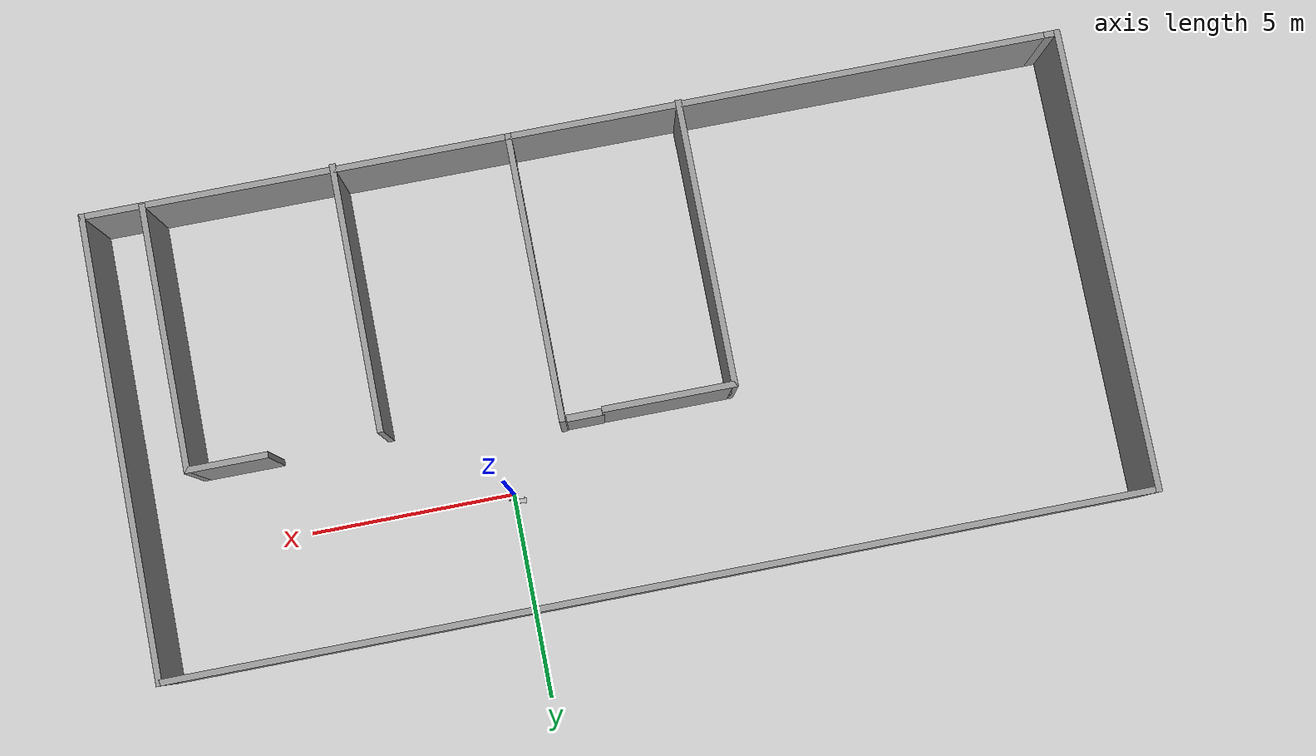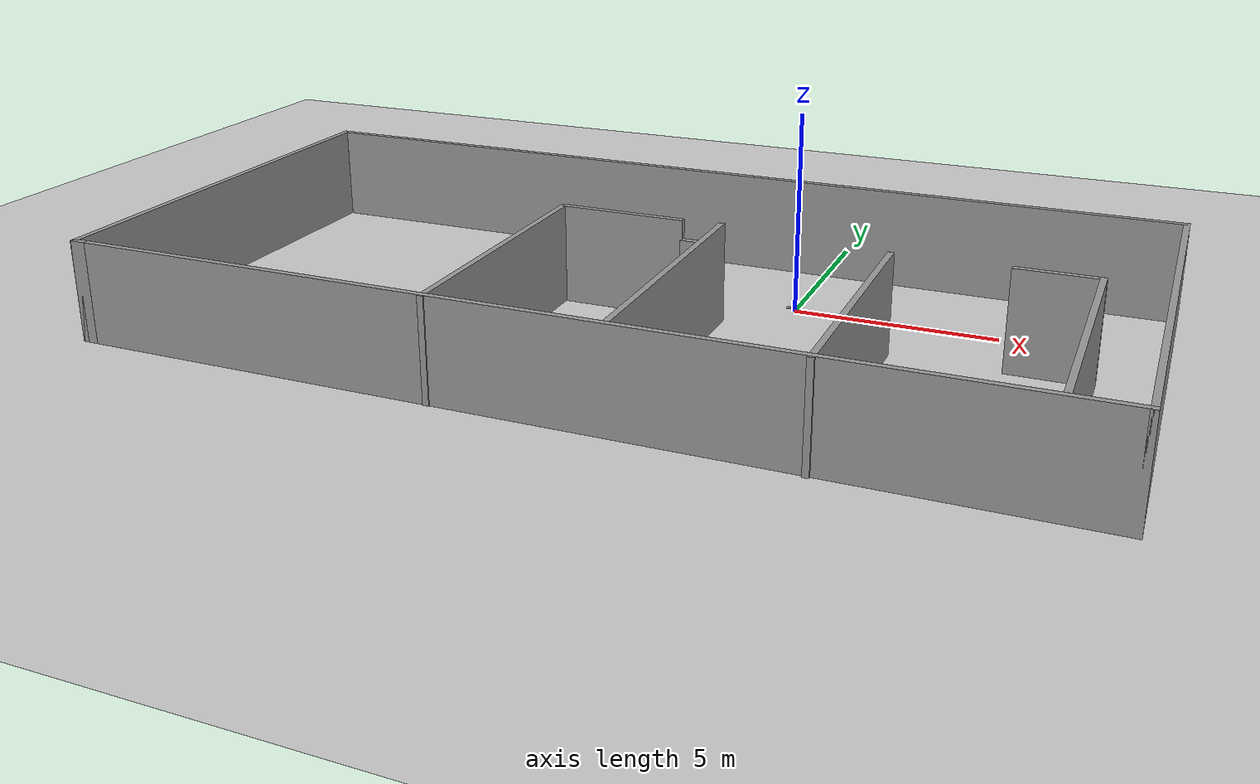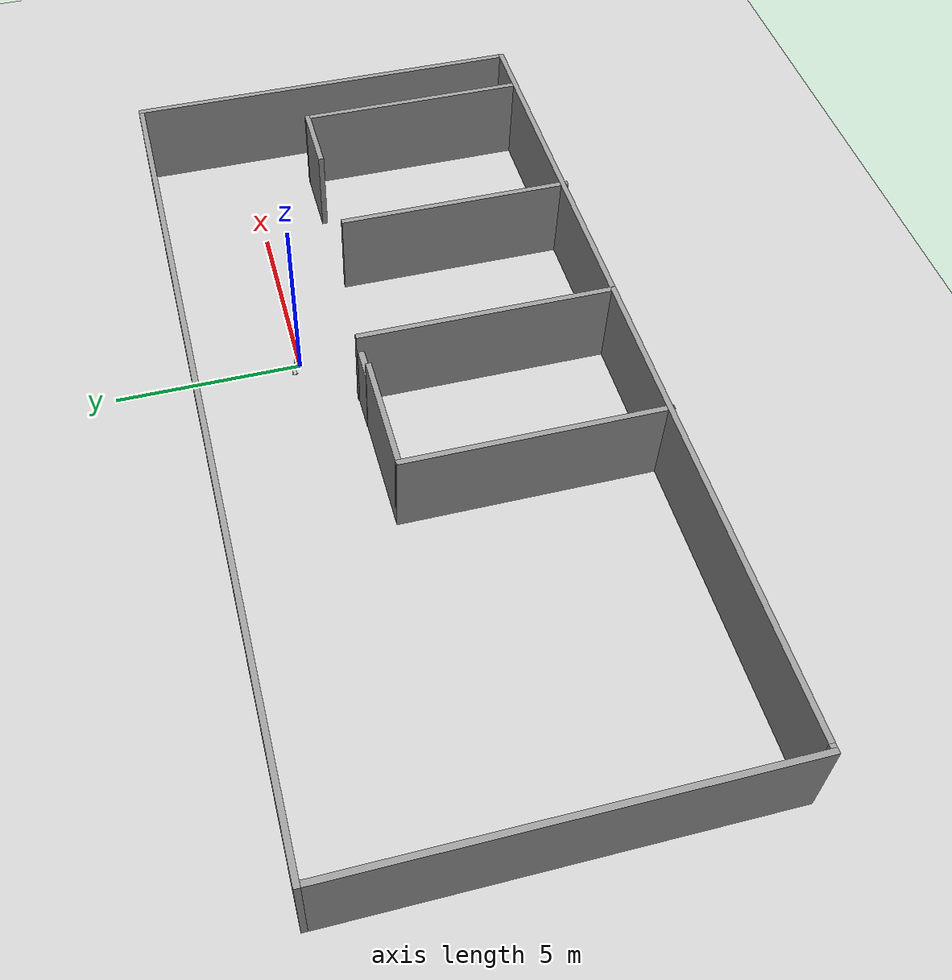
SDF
<sdf version="1.7">
 <world name="default">
  <light name="sun" type="directional">
   <pose>0 0 10 0 -0 0</pose>
   <diffuse>0.8 0.8 0.8 1</diffuse>
   <specular>0.2 0.2 0.2 1</specular>
   <attenuation>
    <range>1000</range>
    <constant>0.9</constant>
    <linear>0.01</linear>
    <quadratic>0.001</quadratic>
   </attenuation>
   <direction>-0.5 0.1 -0.9</direction>
   <spot><inner_angle>0</inner_angle><outer_angle>0</outer_angle><falloff>0</falloff></spot>
  </light>
  <model name="ground_plane">
   <static>1</static>
   <link name="link">
    <collision name="collision">
     <geometry><plane><normal>0 0 1</normal><size>100 100</size></plane></geometry>
     <surface><friction><ode><mu>100</mu><mu2>50</mu2></ode></friction></surface>
    </collision>
    <visual name="visual">
     <cast_shadows>0</cast_shadows>
     <geometry><plane><normal>0 0 1</normal><size>100 100</size></plane></geometry>
     <material>
      <script><uri>file://media/materials/scripts/gazebo.material</uri><name>Gazebo/Grey</name></script>
     </material>
    </visual>
   </link>
  </model>
  <gravity>0 0 -9.8</gravity>
  <magnetic_field>6e-06 2.3e-05 -4.2e-05</magnetic_field>
  <atmosphere type="adiabatic"/>
  <physics type="ode">
   <max_step_size>0.001</max_step_size>
   <real_time_factor>1</real_time_factor>
   <real_time_update_rate>1000</real_time_update_rate>
  </physics>
  <scene><ambient>0.4 0.4 0.4 1</ambient><background>0.7 0.7 0.7 1</background><shadows>1</shadows></scene>
  <spherical_coordinates>
   <surface_model>EARTH_WGS84</surface_model>
   <latitude_deg>0</latitude_deg>
   <longitude_deg>0</longitude_deg>
   <elevation>0</elevation>
   <heading_deg>0</heading_deg>
  </spherical_coordinates>
  <model name="model1">
   <pose>-3.05629 -2.70177 0 0 -0 0</pose>
   <link name="Door_2">
    <collision name="Door_2_Collision">
     <geometry><box><size>0.9 0.17 2</size></box></geometry>
     <pose>0 0 1 0 -0 0</pose>
    </collision>
    <visual name="Door_2_Visual">
     <pose>0 0 1 0 -0 0</pose>
     <geometry><box><size>0.9 0.17 2</size></box></geometry>
     <material>
      <script><uri>file://media/materials/scripts/gazebo.material</uri><name>Gazebo/Grey</name></script>
     </material>
    </visual>
    <pose>0.991994 1.30221 0 0 -0 0</pose>
   </link>
   <link name="Wall_23">
    <collision name="Wall_23_Collision">
     <geometry><box><size>23.5 0.15 2.5</size></box></geometry>
     <pose>0 0 1.25 0 -0 0</pose>
    </collision>
    <visual name="Wall_23_Visual">
     <pose>0 0 1.25 0 -0 0</pose>
     <geometry><box><size>23.5 0.15 2.5</size></box></geometry>
     <material>
      <script><uri>file://media/materials/scripts/gazebo.material</uri><name>Gazebo/Grey</name></script>
      <ambient>1 1 1 1</ambient>
     </material>
     <meta><layer>0</layer></meta>
    </visual>
    <pose>0.125 -5.51941 0 0 -0 0</pose>
   </link>
   <link name="Wall_24">
    <collision name="Wall_24_Collision">
     <geometry><box><size>11.25 0.15 2.5</size></box></geometry>
     <pose>0 0 1.25 0 -0 0</pose>
    </collision>
    <visual name="Wall_24_Visual">
     <pose>0 0 1.25 0 -0 0</pose>
     <geometry><box><size>11.25 0.15 2.5</size></box></geometry>
     <material>
      <script><uri>file://media/materials/scripts/gazebo.material</uri><name>Gazebo/Grey</name></script>
      <ambient>1 1 1 1</ambient>
     </material>
     <meta><layer>0</layer></meta>
    </visual>
    <pose>11.8 0.03059 0 0 -0 1.5708</pose>
   </link>
   <link name="Wall_25">
    <collision name="Wall_25_Collision">
     <geometry><box><size>23.75 0.15 2.5</size></box></geometry>
     <pose>0 0 1.25 0 -0 0</pose>
    </collision>
    <visual name="Wall_25_Visual">
     <pose>0 0 1.25 0 -0 0</pose>
     <geometry><box><size>23.75 0.15 2.5</size></box></geometry>
     <material>
      <script><uri>file://media/materials/scripts/gazebo.material</uri><name>Gazebo/Grey</name></script>
      <ambient>1 1 1 1</ambient>
     </material>
     <meta><layer>0</layer></meta>
    </visual>
    <pose>-0 5.58059 0 0 -0 3.14159</pose>
   </link>
   <link name="Wall_26">
    <collision name="Wall_26_Collision">
     <geometry><box><size>11.25 0.15 2.5</size></box></geometry>
     <pose>0 0 1.25 0 -0 0</pose>
    </collision>
    <visual name="Wall_26_Visual">
     <pose>0 0 1.25 0 -0 0</pose>
     <geometry><box><size>11.25 0.15 2.5</size></box></geometry>
     <material>
      <script><uri>file://media/materials/scripts/gazebo.material</uri><name>Gazebo/Grey</name></script>
      <ambient>1 1 1 1</ambient>
     </material>
     <meta><layer>0</layer></meta>
    </visual>
    <pose>-11.8 0.03059 0 0 -0 -1.5708</pose>
   </link>
   <link name="Wall_27">
    <collision name="Wall_27_Collision">
     <geometry><box><size>0.4 0.15 2.5</size></box></geometry>
     <pose>0 0 1.25 0 -0 0</pose>
    </collision>
    <visual name="Wall_27_Visual">
     <pose>0 0 1.25 0 -0 0</pose>
     <geometry><box><size>0.4 0.15 2.5</size></box></geometry>
     <material>
      <script><uri>file://media/materials/scripts/gazebo.material</uri><name>Gazebo/Grey</name></script>
      <ambient>1 1 1 1</ambient>
     </material>
     <meta><layer>0</layer></meta>
    </visual>
    <pose>-11.675 -5.51941 0 0 -0 0</pose>
   </link>
   <link name="Wall_29">
    <collision name="Wall_29_Collision">
     <geometry><box><size>7 0.15 2.5</size></box></geometry>
     <pose>0 0 1.25 0 -0 0</pose>
    </collision>
    <visual name="Wall_29_Visual">
     <pose>0 0 1.25 0 -0 0</pose>
     <geometry><box><size>7 0.15 2.5</size></box></geometry>
     <material>
      <script><uri>file://media/materials/scripts/gazebo.material</uri><name>Gazebo/Grey</name></script>
      <ambient>1 1 1 1</ambient>
     </material>
     <meta><layer>0</layer></meta>
    </visual>
    <pose>-2.58706 -2.125 0 0 -0 1.5708</pose>
   </link>
   <link name="Wall_30">
    <collision name="Wall_30_Collision">
     <geometry><box><size>3.25 0.15 2.5</size></box></geometry>
     <pose>0 0 1.25 0 -0 0</pose>
    </collision>
    <visual name="Wall_30_Visual">
     <pose>0 0 1.25 0 -0 0</pose>
     <geometry><box><size>3.25 0.15 2.5</size></box></geometry>
     <material>
      <script><uri>file://media/materials/scripts/gazebo.material</uri><name>Gazebo/Grey</name></script>
      <ambient>1 1 1 1</ambient>
     </material>
     <meta><layer>0</layer></meta>
    </visual>
    <pose>-1.03706 1.3 0 0 -0 0</pose>
   </link>
   <link name="Wall_33">
    <collision name="Wall_33_Collision">
     <geometry><box><size>7 0.15 2.5</size></box></geometry>
     <pose>0 0 1.25 0 -0 0</pose>
    </collision>
    <visual name="Wall_33_Visual">
     <pose>0 0 1.25 0 -0 0</pose>
     <geometry><box><size>7 0.15 2.5</size></box></geometry>
     <material>
      <script><uri>file://media/materials/scripts/gazebo.material</uri><name>Gazebo/Grey</name></script>
      <ambient>1 1 1 1</ambient>
     </material>
     <meta><layer>0</layer></meta>
    </visual>
    <pose>1.54262 -2.0922 0 0 -0 -1.5708</pose>
   </link>
   <link name="Wall_39">
    <collision name="Wall_39_Collision">
     <geometry><box><size>6.5 0.15 2.5</size></box></geometry>
     <pose>0 0 1.25 0 -0 0</pose>
    </collision>
    <visual name="Wall_39_Visual">
     <pose>0 0 1.25 0 -0 0</pose>
     <geometry><box><size>6.5 0.15 2.5</size></box></geometry>
     <material>
      <script><uri>file://media/materials/scripts/gazebo.material</uri><name>Gazebo/Grey</name></script>
      <ambient>1 1 1 1</ambient>
     </material>
     <meta><layer>0</layer></meta>
    </visual>
    <pose>5.76407 -2.40559 0 0 -0 1.5708</pose>
   </link>
   <link name="Wall_41">
    <collision name="Wall_41_Collision">
     <geometry><box><size>6.5 0.15 2.5</size></box></geometry>
     <pose>0 0 1.25 0 -0 0</pose>
    </collision>
    <visual name="Wall_41_Visual">
     <pose>0 0 1.25 0 -0 0</pose>
     <geometry><box><size>6.5 0.15 2.5</size></box></geometry>
     <material>
      <script><uri>file://media/materials/scripts/gazebo.material</uri><name>Gazebo/Grey</name></script>
      <ambient>1 1 1 1</ambient>
     </material>
     <meta><layer>0</layer></meta>
    </visual>
    <pose>10.3526 -2.31382 0 0 -0 1.5708</pose>
   </link>
   <link name="Wall_43">
    <collision name="Wall_43_Collision">
     <geometry><box><size>2 0.15 2.5</size></box></geometry>
     <pose>0 0 1.25 0 -0 0</pose>
    </collision>
    <visual name="Wall_43_Visual">
     <pose>0 0 1.25 0 -0 0</pose>
     <geometry><box><size>2 0.15 2.5</size></box></geometry>
     <material>
      <script><uri>file://media/materials/scripts/gazebo.material</uri><name>Gazebo/Grey</name></script>
      <ambient>1 1 1 1</ambient>
     </material>
     <meta><layer>0</layer></meta>
    </visual>
    <pose>9.4276 0.86118 0 0 -0 3.14159</pose>
   </link>
   <static>1</static>
  </model>
  <model name="box1">
   <link name="base_link">
    <inertial>
     <pose>0 0.065 0 0 -0 0</pose>
     <mass>77.22</mass>
     <inertia>
      <ixx>0.253539</ixx>
      <ixy>0</ixy>
      <ixz>6.9611e-17</ixz>
      <iyy>1.75354</iyy>
      <iyz>-7.44196e-18</iyz>
      <izz>1.7175</izz>
     </inertia>
    </inertial>
    <collision name="base_link_collision">
     <geometry><mesh><scale>1 1 1</scale><uri>model://box1/meshes/base_link.STL</uri></mesh></geometry>
    </collision>
    <visual name="base_link_visual">
     <geometry><mesh><scale>1 1 1</scale><uri>model://box1/meshes/base_link.STL</uri></mesh></geometry>
    </visual>
   </link>
   <pose>-0.174997 0.178082 -2.7e-05 1e-06 2.9e-05 0.000308</pose>
  </model>
  <model name="cube">
   <link name="base_link">
    <inertial>
     <mass>0.024786</mass>
     <inertia>
      <ixx>3.7179e-06</ixx>
      <ixy>-2.2394e-23</ixy>
      <ixz>3.5989e-22</ixz>
      <iyy>3.7179e-06</iyy>
      <iyz>5.688e-39</iyz>
      <izz>3.7179e-06</izz>
     </inertia>
    </inertial>
    <collision name="base_link_collision">
     <geometry><mesh><scale>1 1 1</scale><uri>model://cube/meshes/base_link.STL</uri></mesh></geometry>
    </collision>
    <visual name="base_link_visual">
     <geometry><mesh><scale>1 1 1</scale><uri>model://cube/meshes/base_link.STL</uri></mesh></geometry>
    </visual>
   </link>
   <pose>0.043416 0.130023 0.144957 1.5708 2.9e-05 -0.004527</pose>
  </model>
 </world>
</sdf>
